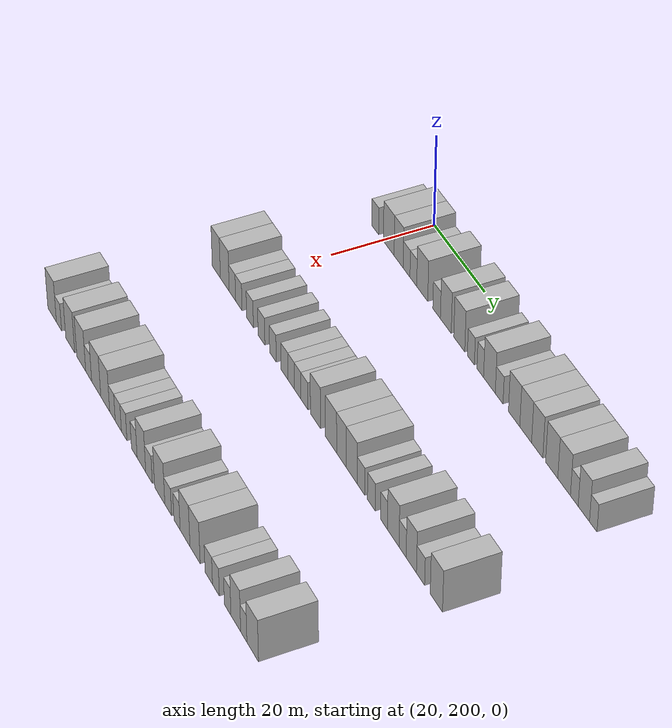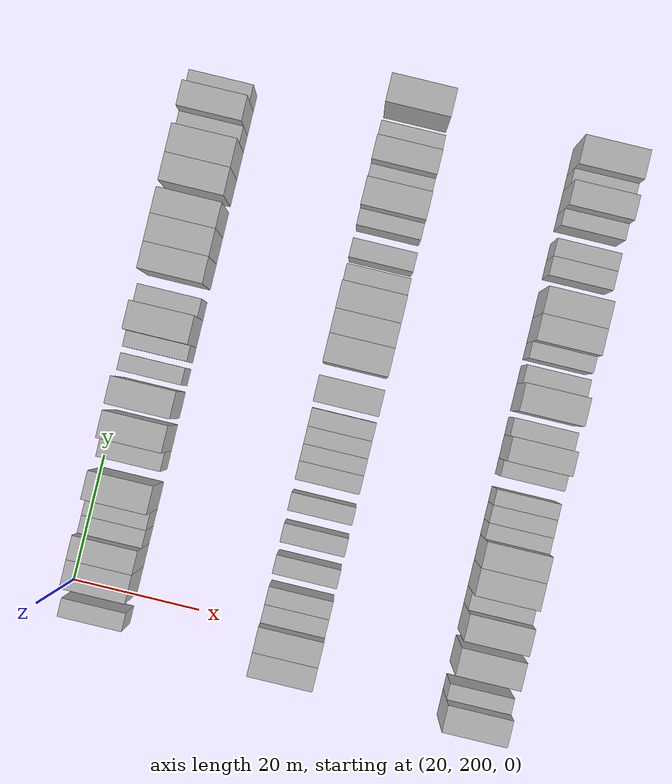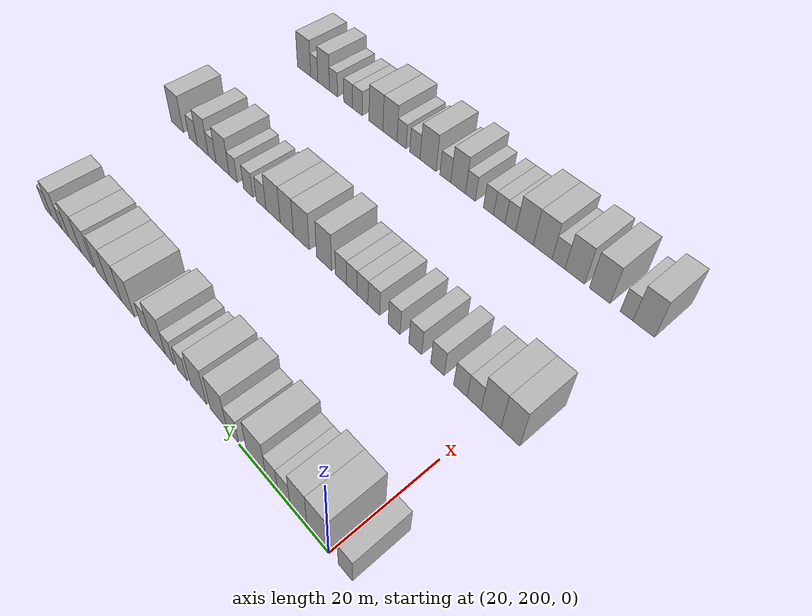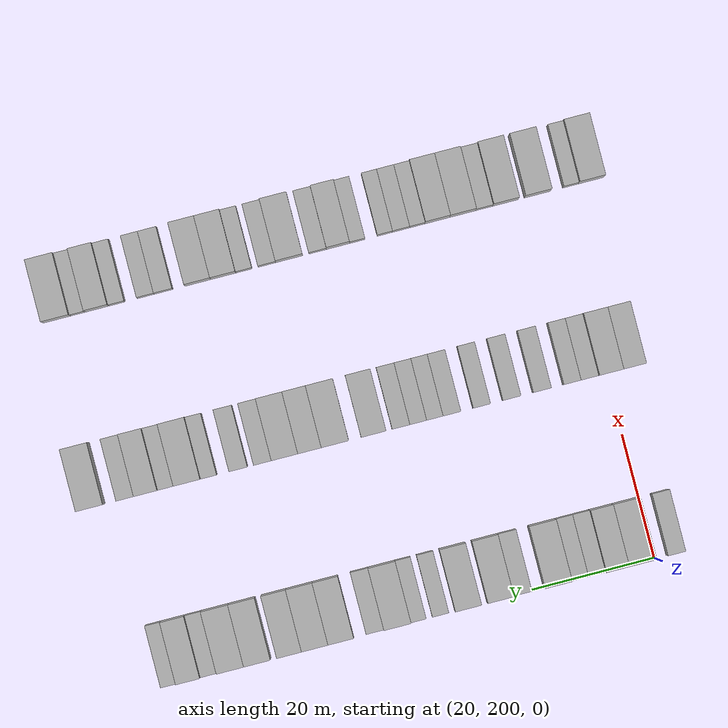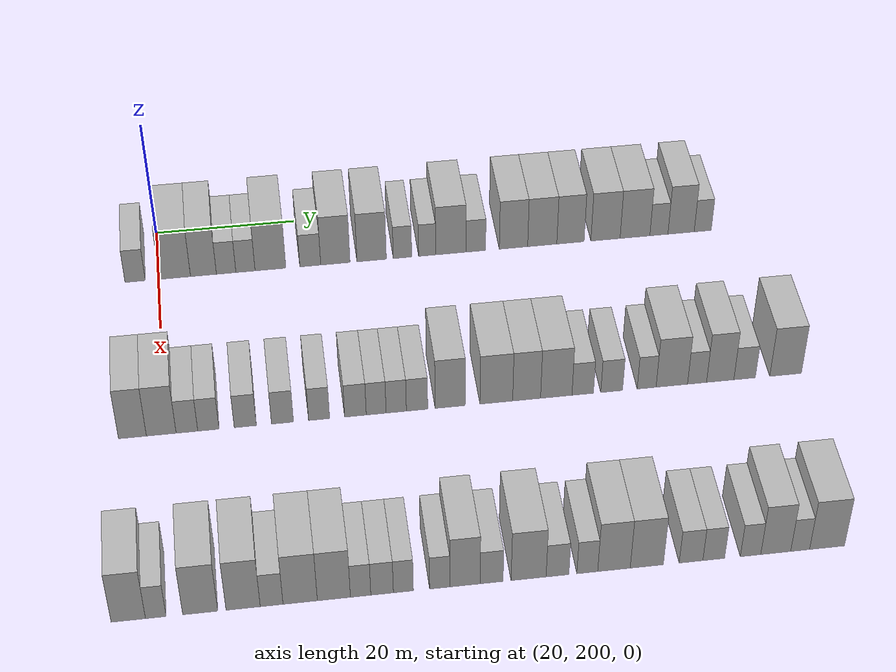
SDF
<sdf version="1.6">
 <world name="default">
  <model name="building_119">
   <static>1</static>
   <pose>25.0000 196.7462 0 0.000000 0.000000 0.000000</pose>
   <link name="link">
    <pose>0 0 3.00 0 0 0</pose>
    <collision name="collision"><geometry><box><size>10.0000 2.8554 6.0000</size></box></geometry></collision>
    <visual name="visual">
     <cast_shadows>0</cast_shadows>
     <geometry><box><size>10.0000 2.8554 6.0000</size></box></geometry>
     <material>
      <script>
       <uri>model://HANNAS_wall/materials/scripts</uri>
       <uri>model://HANNAS_wall/materials/textures</uri>
       <name>vrc/HANNAS_wall</name>
      </script>
     </material>
    </visual>
   </link>
  </model>
  <model name="building_120">
   <static>1</static>
   <pose>25.0000 202.3743 0 0.000000 0.000000 0.000000</pose>
   <link name="link">
    <pose>0 0 4.50 0 0 0</pose>
    <collision name="collision"><geometry><box><size>10.0000 4.4009 9.0000</size></box></geometry></collision>
    <visual name="visual">
     <cast_shadows>0</cast_shadows>
     <geometry><box><size>10.0000 4.4009 9.0000</size></box></geometry>
     <material>
      <script>
       <uri>model://HANNAS_wall/materials/scripts</uri>
       <uri>model://HANNAS_wall/materials/textures</uri>
       <name>vrc/HANNAS_wall</name>
      </script>
     </material>
    </visual>
   </link>
  </model>
  <model name="building_121">
   <static>1</static>
   <pose>25.0000 206.4135 0 0.000000 0.000000 0.000000</pose>
   <link name="link">
    <pose>0 0 4.50 0 0 0</pose>
    <collision name="collision"><geometry><box><size>10.0000 3.6773 9.0000</size></box></geometry></collision>
    <visual name="visual">
     <cast_shadows>0</cast_shadows>
     <geometry><box><size>10.0000 3.6773 9.0000</size></box></geometry>
     <material>
      <script>
       <uri>model://HANNAS_wall/materials/scripts</uri>
       <uri>model://HANNAS_wall/materials/textures</uri>
       <name>vrc/HANNAS_wall</name>
      </script>
     </material>
    </visual>
   </link>
  </model>
  <model name="building_122">
   <static>1</static>
   <pose>25.0000 209.6356 0 0.000000 0.000000 0.000000</pose>
   <link name="link">
    <pose>0 0 3.00 0 0 0</pose>
    <collision name="collision"><geometry><box><size>10.0000 2.7668 6.0000</size></box></geometry></collision>
    <visual name="visual">
     <cast_shadows>0</cast_shadows>
     <geometry><box><size>10.0000 2.7668 6.0000</size></box></geometry>
     <material>
      <script>
       <uri>model://HANNAS_wall/materials/scripts</uri>
       <uri>model://HANNAS_wall/materials/textures</uri>
       <name>vrc/HANNAS_wall</name>
      </script>
     </material>
    </visual>
   </link>
  </model>
  <model name="building_123">
   <static>1</static>
   <pose>25.0000 212.3842 0 0.000000 0.000000 0.000000</pose>
   <link name="link">
    <pose>0 0 3.00 0 0 0</pose>
    <collision name="collision"><geometry><box><size>10.0000 2.7304 6.0000</size></box></geometry></collision>
    <visual name="visual">
     <cast_shadows>0</cast_shadows>
     <geometry><box><size>10.0000 2.7304 6.0000</size></box></geometry>
     <material>
      <script>
       <uri>model://HANNAS_wall/materials/scripts</uri>
       <uri>model://HANNAS_wall/materials/textures</uri>
       <name>vrc/HANNAS_wall</name>
      </script>
     </material>
    </visual>
   </link>
  </model>
  <model name="building_124">
   <static>1</static>
   <pose>25.0000 215.9480 0 0.000000 0.000000 0.000000</pose>
   <link name="link">
    <pose>0 0 4.50 0 0 0</pose>
    <collision name="collision"><geometry><box><size>10.0000 4.3972 9.0000</size></box></geometry></collision>
    <visual name="visual">
     <cast_shadows>0</cast_shadows>
     <geometry><box><size>10.0000 4.3972 9.0000</size></box></geometry>
     <material>
      <script>
       <uri>model://HANNAS_wall/materials/scripts</uri>
       <uri>model://HANNAS_wall/materials/textures</uri>
       <name>vrc/HANNAS_wall</name>
      </script>
     </material>
    </visual>
   </link>
  </model>
  <model name="building_125">
   <static>1</static>
   <pose>25.0000 221.6409 0 0.000000 0.000000 0.000000</pose>
   <link name="link">
    <pose>0 0 3.00 0 0 0</pose>
    <collision name="collision"><geometry><box><size>10.0000 2.9886 6.0000</size></box></geometry></collision>
    <visual name="visual">
     <cast_shadows>0</cast_shadows>
     <geometry><box><size>10.0000 2.9886 6.0000</size></box></geometry>
     <material>
      <script>
       <uri>model://HANNAS_wall/materials/scripts</uri>
       <uri>model://HANNAS_wall/materials/textures</uri>
       <name>vrc/HANNAS_wall</name>
      </script>
     </material>
    </visual>
   </link>
  </model>
  <model name="building_126">
   <static>1</static>
   <pose>25.0000 225.2407 0 0.000000 0.000000 0.000000</pose>
   <link name="link">
    <pose>0 0 4.50 0 0 0</pose>
    <collision name="collision"><geometry><box><size>10.0000 4.2111 9.0000</size></box></geometry></collision>
    <visual name="visual">
     <cast_shadows>0</cast_shadows>
     <geometry><box><size>10.0000 4.2111 9.0000</size></box></geometry>
     <material>
      <script>
       <uri>model://HANNAS_wall/materials/scripts</uri>
       <uri>model://HANNAS_wall/materials/textures</uri>
       <name>vrc/HANNAS_wall</name>
      </script>
     </material>
    </visual>
   </link>
  </model>
  <model name="building_127">
   <static>1</static>
   <pose>25.0000 230.4610 0 0.000000 0.000000 0.000000</pose>
   <link name="link">
    <pose>0 0 4.50 0 0 0</pose>
    <collision name="collision"><geometry><box><size>10.0000 4.2294 9.0000</size></box></geometry></collision>
    <visual name="visual">
     <cast_shadows>0</cast_shadows>
     <geometry><box><size>10.0000 4.2294 9.0000</size></box></geometry>
     <material>
      <script>
       <uri>model://HANNAS_wall/materials/scripts</uri>
       <uri>model://HANNAS_wall/materials/textures</uri>
       <name>vrc/HANNAS_wall</name>
      </script>
     </material>
    </visual>
   </link>
  </model>
  <model name="building_128">
   <static>1</static>
   <pose>25.0000 234.9080 0 0.000000 0.000000 0.000000</pose>
   <link name="link">
    <pose>0 0 3.00 0 0 0</pose>
    <collision name="collision"><geometry><box><size>10.0000 2.6645 6.0000</size></box></geometry></collision>
    <visual name="visual">
     <cast_shadows>0</cast_shadows>
     <geometry><box><size>10.0000 2.6645 6.0000</size></box></geometry>
     <material>
      <script>
       <uri>model://HANNAS_wall/materials/scripts</uri>
       <uri>model://HANNAS_wall/materials/textures</uri>
       <name>vrc/HANNAS_wall</name>
      </script>
     </material>
    </visual>
   </link>
  </model>
  <model name="building_129">
   <static>1</static>
   <pose>25.0000 238.4753 0 0.000000 0.000000 0.000000</pose>
   <link name="link">
    <pose>0 0 3.00 0 0 0</pose>
    <collision name="collision"><geometry><box><size>10.0000 2.4701 6.0000</size></box></geometry></collision>
    <visual name="visual">
     <cast_shadows>0</cast_shadows>
     <geometry><box><size>10.0000 2.4701 6.0000</size></box></geometry>
     <material>
      <script>
       <uri>model://HANNAS_wall/materials/scripts</uri>
       <uri>model://HANNAS_wall/materials/textures</uri>
       <name>vrc/HANNAS_wall</name>
      </script>
     </material>
    </visual>
   </link>
  </model>
  <model name="building_130">
   <static>1</static>
   <pose>25.0000 241.9039 0 0.000000 0.000000 0.000000</pose>
   <link name="link">
    <pose>0 0 4.50 0 0 0</pose>
    <collision name="collision"><geometry><box><size>10.0000 4.3871 9.0000</size></box></geometry></collision>
    <visual name="visual">
     <cast_shadows>0</cast_shadows>
     <geometry><box><size>10.0000 4.3871 9.0000</size></box></geometry>
     <material>
      <script>
       <uri>model://HANNAS_wall/materials/scripts</uri>
       <uri>model://HANNAS_wall/materials/textures</uri>
       <name>vrc/HANNAS_wall</name>
      </script>
     </material>
    </visual>
   </link>
  </model>
  <model name="building_131">
   <static>1</static>
   <pose>25.0000 245.5277 0 0.000000 0.000000 0.000000</pose>
   <link name="link">
    <pose>0 0 3.00 0 0 0</pose>
    <collision name="collision"><geometry><box><size>10.0000 2.8605 6.0000</size></box></geometry></collision>
    <visual name="visual">
     <cast_shadows>0</cast_shadows>
     <geometry><box><size>10.0000 2.8605 6.0000</size></box></geometry>
     <material>
      <script>
       <uri>model://HANNAS_wall/materials/scripts</uri>
       <uri>model://HANNAS_wall/materials/textures</uri>
       <name>vrc/HANNAS_wall</name>
      </script>
     </material>
    </visual>
   </link>
  </model>
  <model name="building_132">
   <static>1</static>
   <pose>25.0000 251.0271 0 0.000000 0.000000 0.000000</pose>
   <link name="link">
    <pose>0 0 4.50 0 0 0</pose>
    <collision name="collision"><geometry><box><size>10.0000 4.1383 9.0000</size></box></geometry></collision>
    <visual name="visual">
     <cast_shadows>0</cast_shadows>
     <geometry><box><size>10.0000 4.1383 9.0000</size></box></geometry>
     <material>
      <script>
       <uri>model://HANNAS_wall/materials/scripts</uri>
       <uri>model://HANNAS_wall/materials/textures</uri>
       <name>vrc/HANNAS_wall</name>
      </script>
     </material>
    </visual>
   </link>
  </model>
  <model name="building_133">
   <static>1</static>
   <pose>25.0000 255.2303 0 0.000000 0.000000 0.000000</pose>
   <link name="link">
    <pose>0 0 4.50 0 0 0</pose>
    <collision name="collision"><geometry><box><size>10.0000 4.2679 9.0000</size></box></geometry></collision>
    <visual name="visual">
     <cast_shadows>0</cast_shadows>
     <geometry><box><size>10.0000 4.2679 9.0000</size></box></geometry>
     <material>
      <script>
       <uri>model://HANNAS_wall/materials/scripts</uri>
       <uri>model://HANNAS_wall/materials/textures</uri>
       <name>vrc/HANNAS_wall</name>
      </script>
     </material>
    </visual>
   </link>
  </model>
  <model name="building_134">
   <static>1</static>
   <pose>25.0000 259.3645 0 0.000000 0.000000 0.000000</pose>
   <link name="link">
    <pose>0 0 4.50 0 0 0</pose>
    <collision name="collision"><geometry><box><size>10.0000 4.0006 9.0000</size></box></geometry></collision>
    <visual name="visual">
     <cast_shadows>0</cast_shadows>
     <geometry><box><size>10.0000 4.0006 9.0000</size></box></geometry>
     <material>
      <script>
       <uri>model://HANNAS_wall/materials/scripts</uri>
       <uri>model://HANNAS_wall/materials/textures</uri>
       <name>vrc/HANNAS_wall</name>
      </script>
     </material>
    </visual>
   </link>
  </model>
  <model name="building_135">
   <static>1</static>
   <pose>25.0000 264.5157 0 0.000000 0.000000 0.000000</pose>
   <link name="link">
    <pose>0 0 4.50 0 0 0</pose>
    <collision name="collision"><geometry><box><size>10.0000 4.3018 9.0000</size></box></geometry></collision>
    <visual name="visual">
     <cast_shadows>0</cast_shadows>
     <geometry><box><size>10.0000 4.3018 9.0000</size></box></geometry>
     <material>
      <script>
       <uri>model://HANNAS_wall/materials/scripts</uri>
       <uri>model://HANNAS_wall/materials/textures</uri>
       <name>vrc/HANNAS_wall</name>
      </script>
     </material>
    </visual>
   </link>
  </model>
  <model name="building_136">
   <static>1</static>
   <pose>25.0000 268.8646 0 0.000000 0.000000 0.000000</pose>
   <link name="link">
    <pose>0 0 4.50 0 0 0</pose>
    <collision name="collision"><geometry><box><size>10.0000 4.3961 9.0000</size></box></geometry></collision>
    <visual name="visual">
     <cast_shadows>0</cast_shadows>
     <geometry><box><size>10.0000 4.3961 9.0000</size></box></geometry>
     <material>
      <script>
       <uri>model://HANNAS_wall/materials/scripts</uri>
       <uri>model://HANNAS_wall/materials/textures</uri>
       <name>vrc/HANNAS_wall</name>
      </script>
     </material>
    </visual>
   </link>
  </model>
  <model name="building_137">
   <static>1</static>
   <pose>25.0000 272.3982 0 0.000000 0.000000 0.000000</pose>
   <link name="link">
    <pose>0 0 3.00 0 0 0</pose>
    <collision name="collision"><geometry><box><size>10.0000 2.6710 6.0000</size></box></geometry></collision>
    <visual name="visual">
     <cast_shadows>0</cast_shadows>
     <geometry><box><size>10.0000 2.6710 6.0000</size></box></geometry>
     <material>
      <script>
       <uri>model://HANNAS_wall/materials/scripts</uri>
       <uri>model://HANNAS_wall/materials/textures</uri>
       <name>vrc/HANNAS_wall</name>
      </script>
     </material>
    </visual>
   </link>
  </model>
  <model name="building_138">
   <static>1</static>
   <pose>25.0000 275.6759 0 0.000000 0.000000 0.000000</pose>
   <link name="link">
    <pose>0 0 4.50 0 0 0</pose>
    <collision name="collision"><geometry><box><size>10.0000 3.8845 9.0000</size></box></geometry></collision>
    <visual name="visual">
     <cast_shadows>0</cast_shadows>
     <geometry><box><size>10.0000 3.8845 9.0000</size></box></geometry>
     <material>
      <script>
       <uri>model://HANNAS_wall/materials/scripts</uri>
       <uri>model://HANNAS_wall/materials/textures</uri>
       <name>vrc/HANNAS_wall</name>
      </script>
     </material>
    </visual>
   </link>
  </model>
  <model name="building_139">
   <static>1</static>
   <pose>25.0000 278.8853 0 0.000000 0.000000 0.000000</pose>
   <link name="link">
    <pose>0 0 3.00 0 0 0</pose>
    <collision name="collision"><geometry><box><size>10.0000 2.5343 6.0000</size></box></geometry></collision>
    <visual name="visual">
     <cast_shadows>0</cast_shadows>
     <geometry><box><size>10.0000 2.5343 6.0000</size></box></geometry>
     <material>
      <script>
       <uri>model://HANNAS_wall/materials/scripts</uri>
       <uri>model://HANNAS_wall/materials/textures</uri>
       <name>vrc/HANNAS_wall</name>
      </script>
     </material>
    </visual>
   </link>
  </model>
  <model name="building_243">
   <static>1</static>
   <pose>55.0000 195.8498 0 0.000000 0.000000 0.000000</pose>
   <link name="link">
    <pose>0 0 4.50 0 0 0</pose>
    <collision name="collision"><geometry><box><size>10.0000 3.6462 9.0000</size></box></geometry></collision>
    <visual name="visual">
     <cast_shadows>0</cast_shadows>
     <geometry><box><size>10.0000 3.6462 9.0000</size></box></geometry>
     <material>
      <script>
       <uri>model://HANNAS_wall/materials/scripts</uri>
       <uri>model://HANNAS_wall/materials/textures</uri>
       <name>vrc/HANNAS_wall</name>
      </script>
     </material>
    </visual>
   </link>
  </model>
  <model name="building_244">
   <static>1</static>
   <pose>55.0000 199.6202 0 0.000000 0.000000 0.000000</pose>
   <link name="link">
    <pose>0 0 4.50 0 0 0</pose>
    <collision name="collision"><geometry><box><size>10.0000 3.8945 9.0000</size></box></geometry></collision>
    <visual name="visual">
     <cast_shadows>0</cast_shadows>
     <geometry><box><size>10.0000 3.8945 9.0000</size></box></geometry>
     <material>
      <script>
       <uri>model://HANNAS_wall/materials/scripts</uri>
       <uri>model://HANNAS_wall/materials/textures</uri>
       <name>vrc/HANNAS_wall</name>
      </script>
     </material>
    </visual>
   </link>
  </model>
  <model name="building_245">
   <static>1</static>
   <pose>55.0000 202.9882 0 0.000000 0.000000 0.000000</pose>
   <link name="link">
    <pose>0 0 3.00 0 0 0</pose>
    <collision name="collision"><geometry><box><size>10.0000 2.8415 6.0000</size></box></geometry></collision>
    <visual name="visual">
     <cast_shadows>0</cast_shadows>
     <geometry><box><size>10.0000 2.8415 6.0000</size></box></geometry>
     <material>
      <script>
       <uri>model://HANNAS_wall/materials/scripts</uri>
       <uri>model://HANNAS_wall/materials/textures</uri>
       <name>vrc/HANNAS_wall</name>
      </script>
     </material>
    </visual>
   </link>
  </model>
  <model name="building_246">
   <static>1</static>
   <pose>55.0000 205.8074 0 0.000000 0.000000 0.000000</pose>
   <link name="link">
    <pose>0 0 3.00 0 0 0</pose>
    <collision name="collision"><geometry><box><size>10.0000 2.7969 6.0000</size></box></geometry></collision>
    <visual name="visual">
     <cast_shadows>0</cast_shadows>
     <geometry><box><size>10.0000 2.7969 6.0000</size></box></geometry>
     <material>
      <script>
       <uri>model://HANNAS_wall/materials/scripts</uri>
       <uri>model://HANNAS_wall/materials/textures</uri>
       <name>vrc/HANNAS_wall</name>
      </script>
     </material>
    </visual>
   </link>
  </model>
  <model name="building_247">
   <static>1</static>
   <pose>55.0000 210.6653 0 0.000000 0.000000 0.000000</pose>
   <link name="link">
    <pose>0 0 3.00 0 0 0</pose>
    <collision name="collision"><geometry><box><size>10.0000 2.9189 6.0000</size></box></geometry></collision>
    <visual name="visual">
     <cast_shadows>0</cast_shadows>
     <geometry><box><size>10.0000 2.9189 6.0000</size></box></geometry>
     <material>
      <script>
       <uri>model://HANNAS_wall/materials/scripts</uri>
       <uri>model://HANNAS_wall/materials/textures</uri>
       <name>vrc/HANNAS_wall</name>
      </script>
     </material>
    </visual>
   </link>
  </model>
  <model name="building_248">
   <static>1</static>
   <pose>55.0000 215.5803 0 0.000000 0.000000 0.000000</pose>
   <link name="link">
    <pose>0 0 3.00 0 0 0</pose>
    <collision name="collision"><geometry><box><size>10.0000 2.9110 6.0000</size></box></geometry></collision>
    <visual name="visual">
     <cast_shadows>0</cast_shadows>
     <geometry><box><size>10.0000 2.9110 6.0000</size></box></geometry>
     <material>
      <script>
       <uri>model://HANNAS_wall/materials/scripts</uri>
       <uri>model://HANNAS_wall/materials/textures</uri>
       <name>vrc/HANNAS_wall</name>
      </script>
     </material>
    </visual>
   </link>
  </model>
  <model name="building_249">
   <static>1</static>
   <pose>55.0000 220.4336 0 0.000000 0.000000 0.000000</pose>
   <link name="link">
    <pose>0 0 3.00 0 0 0</pose>
    <collision name="collision"><geometry><box><size>10.0000 2.7955 6.0000</size></box></geometry></collision>
    <visual name="visual">
     <cast_shadows>0</cast_shadows>
     <geometry><box><size>10.0000 2.7955 6.0000</size></box></geometry>
     <material>
      <script>
       <uri>model://HANNAS_wall/materials/scripts</uri>
       <uri>model://HANNAS_wall/materials/textures</uri>
       <name>vrc/HANNAS_wall</name>
      </script>
     </material>
    </visual>
   </link>
  </model>
  <model name="building_250">
   <static>1</static>
   <pose>55.0000 225.2706 0 0.000000 0.000000 0.000000</pose>
   <link name="link">
    <pose>0 0 3.00 0 0 0</pose>
    <collision name="collision"><geometry><box><size>10.0000 2.8784 6.0000</size></box></geometry></collision>
    <visual name="visual">
     <cast_shadows>0</cast_shadows>
     <geometry><box><size>10.0000 2.8784 6.0000</size></box></geometry>
     <material>
      <script>
       <uri>model://HANNAS_wall/materials/scripts</uri>
       <uri>model://HANNAS_wall/materials/textures</uri>
       <name>vrc/HANNAS_wall</name>
      </script>
     </material>
    </visual>
   </link>
  </model>
  <model name="building_251">
   <static>1</static>
   <pose>55.0000 228.0344 0 0.000000 0.000000 0.000000</pose>
   <link name="link">
    <pose>0 0 3.00 0 0 0</pose>
    <collision name="collision"><geometry><box><size>10.0000 2.6492 6.0000</size></box></geometry></collision>
    <visual name="visual">
     <cast_shadows>0</cast_shadows>
     <geometry><box><size>10.0000 2.6492 6.0000</size></box></geometry>
     <material>
      <script>
       <uri>model://HANNAS_wall/materials/scripts</uri>
       <uri>model://HANNAS_wall/materials/textures</uri>
       <name>vrc/HANNAS_wall</name>
      </script>
     </material>
    </visual>
   </link>
  </model>
  <model name="building_252">
   <static>1</static>
   <pose>55.0000 230.7153 0 0.000000 0.000000 0.000000</pose>
   <link name="link">
    <pose>0 0 3.00 0 0 0</pose>
    <collision name="collision"><geometry><box><size>10.0000 2.7126 6.0000</size></box></geometry></collision>
    <visual name="visual">
     <cast_shadows>0</cast_shadows>
     <geometry><box><size>10.0000 2.7126 6.0000</size></box></geometry>
     <material>
      <script>
       <uri>model://HANNAS_wall/materials/scripts</uri>
       <uri>model://HANNAS_wall/materials/textures</uri>
       <name>vrc/HANNAS_wall</name>
      </script>
     </material>
    </visual>
   </link>
  </model>
  <model name="building_253">
   <static>1</static>
   <pose>55.0000 233.5018 0 0.000000 0.000000 0.000000</pose>
   <link name="link">
    <pose>0 0 3.00 0 0 0</pose>
    <collision name="collision"><geometry><box><size>10.0000 2.8603 6.0000</size></box></geometry></collision>
    <visual name="visual">
     <cast_shadows>0</cast_shadows>
     <geometry><box><size>10.0000 2.8603 6.0000</size></box></geometry>
     <material>
      <script>
       <uri>model://HANNAS_wall/materials/scripts</uri>
       <uri>model://HANNAS_wall/materials/textures</uri>
       <name>vrc/HANNAS_wall</name>
      </script>
     </material>
    </visual>
   </link>
  </model>
  <model name="building_254">
   <static>1</static>
   <pose>55.0000 237.9435 0 0.000000 0.000000 0.000000</pose>
   <link name="link">
    <pose>0 0 4.50 0 0 0</pose>
    <collision name="collision"><geometry><box><size>10.0000 4.0230 9.0000</size></box></geometry></collision>
    <visual name="visual">
     <cast_shadows>0</cast_shadows>
     <geometry><box><size>10.0000 4.0230 9.0000</size></box></geometry>
     <material>
      <script>
       <uri>model://HANNAS_wall/materials/scripts</uri>
       <uri>model://HANNAS_wall/materials/textures</uri>
       <name>vrc/HANNAS_wall</name>
      </script>
     </material>
    </visual>
   </link>
  </model>
  <model name="building_255">
   <static>1</static>
   <pose>55.0000 244.1635 0 0.000000 0.000000 0.000000</pose>
   <link name="link">
    <pose>0 0 4.50 0 0 0</pose>
    <collision name="collision"><geometry><box><size>10.0000 4.4169 9.0000</size></box></geometry></collision>
    <visual name="visual">
     <cast_shadows>0</cast_shadows>
     <geometry><box><size>10.0000 4.4169 9.0000</size></box></geometry>
     <material>
      <script>
       <uri>model://HANNAS_wall/materials/scripts</uri>
       <uri>model://HANNAS_wall/materials/textures</uri>
       <name>vrc/HANNAS_wall</name>
      </script>
     </material>
    </visual>
   </link>
  </model>
  <model name="building_256">
   <static>1</static>
   <pose>55.0000 248.2604 0 0.000000 0.000000 0.000000</pose>
   <link name="link">
    <pose>0 0 4.50 0 0 0</pose>
    <collision name="collision"><geometry><box><size>10.0000 3.7769 9.0000</size></box></geometry></collision>
    <visual name="visual">
     <cast_shadows>0</cast_shadows>
     <geometry><box><size>10.0000 3.7769 9.0000</size></box></geometry>
     <material>
      <script>
       <uri>model://HANNAS_wall/materials/scripts</uri>
       <uri>model://HANNAS_wall/materials/textures</uri>
       <name>vrc/HANNAS_wall</name>
      </script>
     </material>
    </visual>
   </link>
  </model>
  <model name="building_257">
   <static>1</static>
   <pose>55.0000 252.2804 0 0.000000 0.000000 0.000000</pose>
   <link name="link">
    <pose>0 0 4.50 0 0 0</pose>
    <collision name="collision"><geometry><box><size>10.0000 4.2630 9.0000</size></box></geometry></collision>
    <visual name="visual">
     <cast_shadows>0</cast_shadows>
     <geometry><box><size>10.0000 4.2630 9.0000</size></box></geometry>
     <material>
      <script>
       <uri>model://HANNAS_wall/materials/scripts</uri>
       <uri>model://HANNAS_wall/materials/textures</uri>
       <name>vrc/HANNAS_wall</name>
      </script>
     </material>
    </visual>
   </link>
  </model>
  <model name="building_258">
   <static>1</static>
   <pose>55.0000 255.8735 0 0.000000 0.000000 0.000000</pose>
   <link name="link">
    <pose>0 0 3.00 0 0 0</pose>
    <collision name="collision"><geometry><box><size>10.0000 2.9234 6.0000</size></box></geometry></collision>
    <visual name="visual">
     <cast_shadows>0</cast_shadows>
     <geometry><box><size>10.0000 2.9234 6.0000</size></box></geometry>
     <material>
      <script>
       <uri>model://HANNAS_wall/materials/scripts</uri>
       <uri>model://HANNAS_wall/materials/textures</uri>
       <name>vrc/HANNAS_wall</name>
      </script>
     </material>
    </visual>
   </link>
  </model>
  <model name="building_259">
   <static>1</static>
   <pose>55.0000 259.8208 0 0.000000 0.000000 0.000000</pose>
   <link name="link">
    <pose>0 0 3.00 0 0 0</pose>
    <collision name="collision"><geometry><box><size>10.0000 2.9711 6.0000</size></box></geometry></collision>
    <visual name="visual">
     <cast_shadows>0</cast_shadows>
     <geometry><box><size>10.0000 2.9711 6.0000</size></box></geometry>
     <material>
      <script>
       <uri>model://HANNAS_wall/materials/scripts</uri>
       <uri>model://HANNAS_wall/materials/textures</uri>
       <name>vrc/HANNAS_wall</name>
      </script>
     </material>
    </visual>
   </link>
  </model>
  <model name="building_260">
   <static>1</static>
   <pose>55.0000 264.5985 0 0.000000 0.000000 0.000000</pose>
   <link name="link">
    <pose>0 0 3.00 0 0 0</pose>
    <collision name="collision"><geometry><box><size>10.0000 2.5844 6.0000</size></box></geometry></collision>
    <visual name="visual">
     <cast_shadows>0</cast_shadows>
     <geometry><box><size>10.0000 2.5844 6.0000</size></box></geometry>
     <material>
      <script>
       <uri>model://HANNAS_wall/materials/scripts</uri>
       <uri>model://HANNAS_wall/materials/textures</uri>
       <name>vrc/HANNAS_wall</name>
      </script>
     </material>
    </visual>
   </link>
  </model>
  <model name="building_261">
   <static>1</static>
   <pose>55.0000 268.0475 0 0.000000 0.000000 0.000000</pose>
   <link name="link">
    <pose>0 0 4.50 0 0 0</pose>
    <collision name="collision"><geometry><box><size>10.0000 4.3136 9.0000</size></box></geometry></collision>
    <visual name="visual">
     <cast_shadows>0</cast_shadows>
     <geometry><box><size>10.0000 4.3136 9.0000</size></box></geometry>
     <material>
      <script>
       <uri>model://HANNAS_wall/materials/scripts</uri>
       <uri>model://HANNAS_wall/materials/textures</uri>
       <name>vrc/HANNAS_wall</name>
      </script>
     </material>
    </visual>
   </link>
  </model>
  <model name="building_262">
   <static>1</static>
   <pose>55.0000 271.5122 0 0.000000 0.000000 0.000000</pose>
   <link name="link">
    <pose>0 0 3.00 0 0 0</pose>
    <collision name="collision"><geometry><box><size>10.0000 2.6158 6.0000</size></box></geometry></collision>
    <visual name="visual">
     <cast_shadows>0</cast_shadows>
     <geometry><box><size>10.0000 2.6158 6.0000</size></box></geometry>
     <material>
      <script>
       <uri>model://HANNAS_wall/materials/scripts</uri>
       <uri>model://HANNAS_wall/materials/textures</uri>
       <name>vrc/HANNAS_wall</name>
      </script>
     </material>
    </visual>
   </link>
  </model>
  <model name="building_263">
   <static>1</static>
   <pose>55.0000 274.7023 0 0.000000 0.000000 0.000000</pose>
   <link name="link">
    <pose>0 0 4.50 0 0 0</pose>
    <collision name="collision"><geometry><box><size>10.0000 3.7642 9.0000</size></box></geometry></collision>
    <visual name="visual">
     <cast_shadows>0</cast_shadows>
     <geometry><box><size>10.0000 3.7642 9.0000</size></box></geometry>
     <material>
      <script>
       <uri>model://HANNAS_wall/materials/scripts</uri>
       <uri>model://HANNAS_wall/materials/textures</uri>
       <name>vrc/HANNAS_wall</name>
      </script>
     </material>
    </visual>
   </link>
  </model>
  <model name="building_264">
   <static>1</static>
   <pose>55.0000 278.0677 0 0.000000 0.000000 0.000000</pose>
   <link name="link">
    <pose>0 0 3.00 0 0 0</pose>
    <collision name="collision"><geometry><box><size>10.0000 2.9667 6.0000</size></box></geometry></collision>
    <visual name="visual">
     <cast_shadows>0</cast_shadows>
     <geometry><box><size>10.0000 2.9667 6.0000</size></box></geometry>
     <material>
      <script>
       <uri>model://HANNAS_wall/materials/scripts</uri>
       <uri>model://HANNAS_wall/materials/textures</uri>
       <name>vrc/HANNAS_wall</name>
      </script>
     </material>
    </visual>
   </link>
  </model>
  <model name="building_265">
   <static>1</static>
   <pose>55.0000 283.7425 0 0.000000 0.000000 0.000000</pose>
   <link name="link">
    <pose>0 0 4.50 0 0 0</pose>
    <collision name="collision"><geometry><box><size>10.0000 4.3830 9.0000</size></box></geometry></collision>
    <visual name="visual">
     <cast_shadows>0</cast_shadows>
     <geometry><box><size>10.0000 4.3830 9.0000</size></box></geometry>
     <material>
      <script>
       <uri>model://HANNAS_wall/materials/scripts</uri>
       <uri>model://HANNAS_wall/materials/textures</uri>
       <name>vrc/HANNAS_wall</name>
      </script>
     </material>
    </visual>
   </link>
  </model>
  <model name="building_384">
   <static>1</static>
   <pose>85.0000 194.8339 0 0.000000 0.000000 0.000000</pose>
   <link name="link">
    <pose>0 0 4.50 0 0 0</pose>
    <collision name="collision"><geometry><box><size>10.0000 4.1347 9.0000</size></box></geometry></collision>
    <visual name="visual">
     <cast_shadows>0</cast_shadows>
     <geometry><box><size>10.0000 4.1347 9.0000</size></box></geometry>
     <material>
      <script>
       <uri>model://HANNAS_wall/materials/scripts</uri>
       <uri>model://HANNAS_wall/materials/textures</uri>
       <name>vrc/HANNAS_wall</name>
      </script>
     </material>
    </visual>
   </link>
  </model>
  <model name="building_385">
   <static>1</static>
   <pose>85.0000 198.1442 0 0.000000 0.000000 0.000000</pose>
   <link name="link">
    <pose>0 0 3.00 0 0 0</pose>
    <collision name="collision"><geometry><box><size>10.0000 2.4859 6.0000</size></box></geometry></collision>
    <visual name="visual">
     <cast_shadows>0</cast_shadows>
     <geometry><box><size>10.0000 2.4859 6.0000</size></box></geometry>
     <material>
      <script>
       <uri>model://HANNAS_wall/materials/scripts</uri>
       <uri>model://HANNAS_wall/materials/textures</uri>
       <name>vrc/HANNAS_wall</name>
      </script>
     </material>
    </visual>
   </link>
  </model>
  <model name="building_386">
   <static>1</static>
   <pose>85.0000 203.5092 0 0.000000 0.000000 0.000000</pose>
   <link name="link">
    <pose>0 0 4.50 0 0 0</pose>
    <collision name="collision"><geometry><box><size>10.0000 4.2441 9.0000</size></box></geometry></collision>
    <visual name="visual">
     <cast_shadows>0</cast_shadows>
     <geometry><box><size>10.0000 4.2441 9.0000</size></box></geometry>
     <material>
      <script>
       <uri>model://HANNAS_wall/materials/scripts</uri>
       <uri>model://HANNAS_wall/materials/textures</uri>
       <name>vrc/HANNAS_wall</name>
      </script>
     </material>
    </visual>
   </link>
  </model>
  <model name="building_387">
   <static>1</static>
   <pose>85.0000 208.7072 0 0.000000 0.000000 0.000000</pose>
   <link name="link">
    <pose>0 0 4.50 0 0 0</pose>
    <collision name="collision"><geometry><box><size>10.0000 4.1519 9.0000</size></box></geometry></collision>
    <visual name="visual">
     <cast_shadows>0</cast_shadows>
     <geometry><box><size>10.0000 4.1519 9.0000</size></box></geometry>
     <material>
      <script>
       <uri>model://HANNAS_wall/materials/scripts</uri>
       <uri>model://HANNAS_wall/materials/textures</uri>
       <name>vrc/HANNAS_wall</name>
      </script>
     </material>
    </visual>
   </link>
  </model>
  <model name="building_388">
   <static>1</static>
   <pose>85.0000 212.1700 0 0.000000 0.000000 0.000000</pose>
   <link name="link">
    <pose>0 0 3.00 0 0 0</pose>
    <collision name="collision"><geometry><box><size>10.0000 2.7737 6.0000</size></box></geometry></collision>
    <visual name="visual">
     <cast_shadows>0</cast_shadows>
     <geometry><box><size>10.0000 2.7737 6.0000</size></box></geometry>
     <material>
      <script>
       <uri>model://HANNAS_wall/materials/scripts</uri>
       <uri>model://HANNAS_wall/materials/textures</uri>
       <name>vrc/HANNAS_wall</name>
      </script>
     </material>
    </visual>
   </link>
  </model>
  <model name="building_389">
   <static>1</static>
   <pose>85.0000 215.6514 0 0.000000 0.000000 0.000000</pose>
   <link name="link">
    <pose>0 0 4.50 0 0 0</pose>
    <collision name="collision"><geometry><box><size>10.0000 4.1891 9.0000</size></box></geometry></collision>
    <visual name="visual">
     <cast_shadows>0</cast_shadows>
     <geometry><box><size>10.0000 4.1891 9.0000</size></box></geometry>
     <material>
      <script>
       <uri>model://HANNAS_wall/materials/scripts</uri>
       <uri>model://HANNAS_wall/materials/textures</uri>
       <name>vrc/HANNAS_wall</name>
      </script>
     </material>
    </visual>
   </link>
  </model>
  <model name="building_390">
   <static>1</static>
   <pose>85.0000 219.7699 0 0.000000 0.000000 0.000000</pose>
   <link name="link">
    <pose>0 0 4.50 0 0 0</pose>
    <collision name="collision"><geometry><box><size>10.0000 4.0479 9.0000</size></box></geometry></collision>
    <visual name="visual">
     <cast_shadows>0</cast_shadows>
     <geometry><box><size>10.0000 4.0479 9.0000</size></box></geometry>
     <material>
      <script>
       <uri>model://HANNAS_wall/materials/scripts</uri>
       <uri>model://HANNAS_wall/materials/textures</uri>
       <name>vrc/HANNAS_wall</name>
      </script>
     </material>
    </visual>
   </link>
  </model>
  <model name="building_391">
   <static>1</static>
   <pose>85.0000 223.0465 0 0.000000 0.000000 0.000000</pose>
   <link name="link">
    <pose>0 0 3.00 0 0 0</pose>
    <collision name="collision"><geometry><box><size>10.0000 2.5055 6.0000</size></box></geometry></collision>
    <visual name="visual">
     <cast_shadows>0</cast_shadows>
     <geometry><box><size>10.0000 2.5055 6.0000</size></box></geometry>
     <material>
      <script>
       <uri>model://HANNAS_wall/materials/scripts</uri>
       <uri>model://HANNAS_wall/materials/textures</uri>
       <name>vrc/HANNAS_wall</name>
      </script>
     </material>
    </visual>
   </link>
  </model>
  <model name="building_392">
   <static>1</static>
   <pose>85.0000 225.6863 0 0.000000 0.000000 0.000000</pose>
   <link name="link">
    <pose>0 0 3.00 0 0 0</pose>
    <collision name="collision"><geometry><box><size>10.0000 2.7741 6.0000</size></box></geometry></collision>
    <visual name="visual">
     <cast_shadows>0</cast_shadows>
     <geometry><box><size>10.0000 2.7741 6.0000</size></box></geometry>
     <material>
      <script>
       <uri>model://HANNAS_wall/materials/scripts</uri>
       <uri>model://HANNAS_wall/materials/textures</uri>
       <name>vrc/HANNAS_wall</name>
      </script>
     </material>
    </visual>
   </link>
  </model>
  <model name="building_393">
   <static>1</static>
   <pose>85.0000 228.3055 0 0.000000 0.000000 0.000000</pose>
   <link name="link">
    <pose>0 0 3.00 0 0 0</pose>
    <collision name="collision"><geometry><box><size>10.0000 2.4644 6.0000</size></box></geometry></collision>
    <visual name="visual">
     <cast_shadows>0</cast_shadows>
     <geometry><box><size>10.0000 2.4644 6.0000</size></box></geometry>
     <material>
      <script>
       <uri>model://HANNAS_wall/materials/scripts</uri>
       <uri>model://HANNAS_wall/materials/textures</uri>
       <name>vrc/HANNAS_wall</name>
      </script>
     </material>
    </visual>
   </link>
  </model>
  <model name="building_394">
   <static>1</static>
   <pose>85.0000 232.7876 0 0.000000 0.000000 0.000000</pose>
   <link name="link">
    <pose>0 0 3.00 0 0 0</pose>
    <collision name="collision"><geometry><box><size>10.0000 2.5000 6.0000</size></box></geometry></collision>
    <visual name="visual">
     <cast_shadows>0</cast_shadows>
     <geometry><box><size>10.0000 2.5000 6.0000</size></box></geometry>
     <material>
      <script>
       <uri>model://HANNAS_wall/materials/scripts</uri>
       <uri>model://HANNAS_wall/materials/textures</uri>
       <name>vrc/HANNAS_wall</name>
      </script>
     </material>
    </visual>
   </link>
  </model>
  <model name="building_395">
   <static>1</static>
   <pose>85.0000 235.9128 0 0.000000 0.000000 0.000000</pose>
   <link name="link">
    <pose>0 0 4.50 0 0 0</pose>
    <collision name="collision"><geometry><box><size>10.0000 3.7503 9.0000</size></box></geometry></collision>
    <visual name="visual">
     <cast_shadows>0</cast_shadows>
     <geometry><box><size>10.0000 3.7503 9.0000</size></box></geometry>
     <material>
      <script>
       <uri>model://HANNAS_wall/materials/scripts</uri>
       <uri>model://HANNAS_wall/materials/textures</uri>
       <name>vrc/HANNAS_wall</name>
      </script>
     </material>
    </visual>
   </link>
  </model>
  <model name="building_396">
   <static>1</static>
   <pose>85.0000 239.2120 0 0.000000 0.000000 0.000000</pose>
   <link name="link">
    <pose>0 0 3.00 0 0 0</pose>
    <collision name="collision"><geometry><box><size>10.0000 2.8481 6.0000</size></box></geometry></collision>
    <visual name="visual">
     <cast_shadows>0</cast_shadows>
     <geometry><box><size>10.0000 2.8481 6.0000</size></box></geometry>
     <material>
      <script>
       <uri>model://HANNAS_wall/materials/scripts</uri>
       <uri>model://HANNAS_wall/materials/textures</uri>
       <name>vrc/HANNAS_wall</name>
      </script>
     </material>
    </visual>
   </link>
  </model>
  <model name="building_397">
   <static>1</static>
   <pose>85.0000 243.8189 0 0.000000 0.000000 0.000000</pose>
   <link name="link">
    <pose>0 0 4.50 0 0 0</pose>
    <collision name="collision"><geometry><box><size>10.0000 4.3657 9.0000</size></box></geometry></collision>
    <visual name="visual">
     <cast_shadows>0</cast_shadows>
     <geometry><box><size>10.0000 4.3657 9.0000</size></box></geometry>
     <material>
      <script>
       <uri>model://HANNAS_wall/materials/scripts</uri>
       <uri>model://HANNAS_wall/materials/textures</uri>
       <name>vrc/HANNAS_wall</name>
      </script>
     </material>
    </visual>
   </link>
  </model>
  <model name="building_398">
   <static>1</static>
   <pose>85.0000 247.4251 0 0.000000 0.000000 0.000000</pose>
   <link name="link">
    <pose>0 0 3.00 0 0 0</pose>
    <collision name="collision"><geometry><box><size>10.0000 2.8467 6.0000</size></box></geometry></collision>
    <visual name="visual">
     <cast_shadows>0</cast_shadows>
     <geometry><box><size>10.0000 2.8467 6.0000</size></box></geometry>
     <material>
      <script>
       <uri>model://HANNAS_wall/materials/scripts</uri>
       <uri>model://HANNAS_wall/materials/textures</uri>
       <name>vrc/HANNAS_wall</name>
      </script>
     </material>
    </visual>
   </link>
  </model>
  <model name="building_399">
   <static>1</static>
   <pose>85.0000 251.1534 0 0.000000 0.000000 0.000000</pose>
   <link name="link">
    <pose>0 0 3.00 0 0 0</pose>
    <collision name="collision"><geometry><box><size>10.0000 2.6100 6.0000</size></box></geometry></collision>
    <visual name="visual">
     <cast_shadows>0</cast_shadows>
     <geometry><box><size>10.0000 2.6100 6.0000</size></box></geometry>
     <material>
      <script>
       <uri>model://HANNAS_wall/materials/scripts</uri>
       <uri>model://HANNAS_wall/materials/textures</uri>
       <name>vrc/HANNAS_wall</name>
      </script>
     </material>
    </visual>
   </link>
  </model>
  <model name="building_400">
   <static>1</static>
   <pose>85.0000 254.5018 0 0.000000 0.000000 0.000000</pose>
   <link name="link">
    <pose>0 0 4.50 0 0 0</pose>
    <collision name="collision"><geometry><box><size>10.0000 4.0868 9.0000</size></box></geometry></collision>
    <visual name="visual">
     <cast_shadows>0</cast_shadows>
     <geometry><box><size>10.0000 4.0868 9.0000</size></box></geometry>
     <material>
      <script>
       <uri>model://HANNAS_wall/materials/scripts</uri>
       <uri>model://HANNAS_wall/materials/textures</uri>
       <name>vrc/HANNAS_wall</name>
      </script>
     </material>
    </visual>
   </link>
  </model>
  <model name="building_401">
   <static>1</static>
   <pose>85.0000 258.6305 0 0.000000 0.000000 0.000000</pose>
   <link name="link">
    <pose>0 0 4.50 0 0 0</pose>
    <collision name="collision"><geometry><box><size>10.0000 4.1707 9.0000</size></box></geometry></collision>
    <visual name="visual">
     <cast_shadows>0</cast_shadows>
     <geometry><box><size>10.0000 4.1707 9.0000</size></box></geometry>
     <material>
      <script>
       <uri>model://HANNAS_wall/materials/scripts</uri>
       <uri>model://HANNAS_wall/materials/textures</uri>
       <name>vrc/HANNAS_wall</name>
      </script>
     </material>
    </visual>
   </link>
  </model>
  <model name="building_402">
   <static>1</static>
   <pose>85.0000 264.2142 0 0.000000 0.000000 0.000000</pose>
   <link name="link">
    <pose>0 0 3.00 0 0 0</pose>
    <collision name="collision"><geometry><box><size>10.0000 2.9967 6.0000</size></box></geometry></collision>
    <visual name="visual">
     <cast_shadows>0</cast_shadows>
     <geometry><box><size>10.0000 2.9967 6.0000</size></box></geometry>
     <material>
      <script>
       <uri>model://HANNAS_wall/materials/scripts</uri>
       <uri>model://HANNAS_wall/materials/textures</uri>
       <name>vrc/HANNAS_wall</name>
      </script>
     </material>
    </visual>
   </link>
  </model>
  <model name="building_403">
   <static>1</static>
   <pose>85.0000 267.0905 0 0.000000 0.000000 0.000000</pose>
   <link name="link">
    <pose>0 0 3.00 0 0 0</pose>
    <collision name="collision"><geometry><box><size>10.0000 2.7560 6.0000</size></box></geometry></collision>
    <visual name="visual">
     <cast_shadows>0</cast_shadows>
     <geometry><box><size>10.0000 2.7560 6.0000</size></box></geometry>
     <material>
      <script>
       <uri>model://HANNAS_wall/materials/scripts</uri>
       <uri>model://HANNAS_wall/materials/textures</uri>
       <name>vrc/HANNAS_wall</name>
      </script>
     </material>
    </visual>
   </link>
  </model>
  <model name="building_404">
   <static>1</static>
   <pose>85.0000 271.7687 0 0.000000 0.000000 0.000000</pose>
   <link name="link">
    <pose>0 0 3.00 0 0 0</pose>
    <collision name="collision"><geometry><box><size>10.0000 2.6004 6.0000</size></box></geometry></collision>
    <visual name="visual">
     <cast_shadows>0</cast_shadows>
     <geometry><box><size>10.0000 2.6004 6.0000</size></box></geometry>
     <material>
      <script>
       <uri>model://HANNAS_wall/materials/scripts</uri>
       <uri>model://HANNAS_wall/materials/textures</uri>
       <name>vrc/HANNAS_wall</name>
      </script>
     </material>
    </visual>
   </link>
  </model>
  <model name="building_405">
   <static>1</static>
   <pose>85.0000 274.9794 0 0.000000 0.000000 0.000000</pose>
   <link name="link">
    <pose>0 0 4.50 0 0 0</pose>
    <collision name="collision"><geometry><box><size>10.0000 3.8210 9.0000</size></box></geometry></collision>
    <visual name="visual">
     <cast_shadows>0</cast_shadows>
     <geometry><box><size>10.0000 3.8210 9.0000</size></box></geometry>
     <material>
      <script>
       <uri>model://HANNAS_wall/materials/scripts</uri>
       <uri>model://HANNAS_wall/materials/textures</uri>
       <name>vrc/HANNAS_wall</name>
      </script>
     </material>
    </visual>
   </link>
  </model>
  <model name="building_406">
   <static>1</static>
   <pose>85.0000 278.0954 0 0.000000 0.000000 0.000000</pose>
   <link name="link">
    <pose>0 0 3.00 0 0 0</pose>
    <collision name="collision"><geometry><box><size>10.0000 2.4110 6.0000</size></box></geometry></collision>
    <visual name="visual">
     <cast_shadows>0</cast_shadows>
     <geometry><box><size>10.0000 2.4110 6.0000</size></box></geometry>
     <material>
      <script>
       <uri>model://HANNAS_wall/materials/scripts</uri>
       <uri>model://HANNAS_wall/materials/textures</uri>
       <name>vrc/HANNAS_wall</name>
      </script>
     </material>
    </visual>
   </link>
  </model>
  <model name="building_407">
   <static>1</static>
   <pose>85.0000 281.5373 0 0.000000 0.000000 0.000000</pose>
   <link name="link">
    <pose>0 0 4.50 0 0 0</pose>
    <collision name="collision"><geometry><box><size>10.0000 4.4728 9.0000</size></box></geometry></collision>
    <visual name="visual">
     <cast_shadows>0</cast_shadows>
     <geometry><box><size>10.0000 4.4728 9.0000</size></box></geometry>
     <material>
      <script>
       <uri>model://HANNAS_wall/materials/scripts</uri>
       <uri>model://HANNAS_wall/materials/textures</uri>
       <name>vrc/HANNAS_wall</name>
      </script>
     </material>
    </visual>
   </link>
  </model>
 </world>
</sdf>
